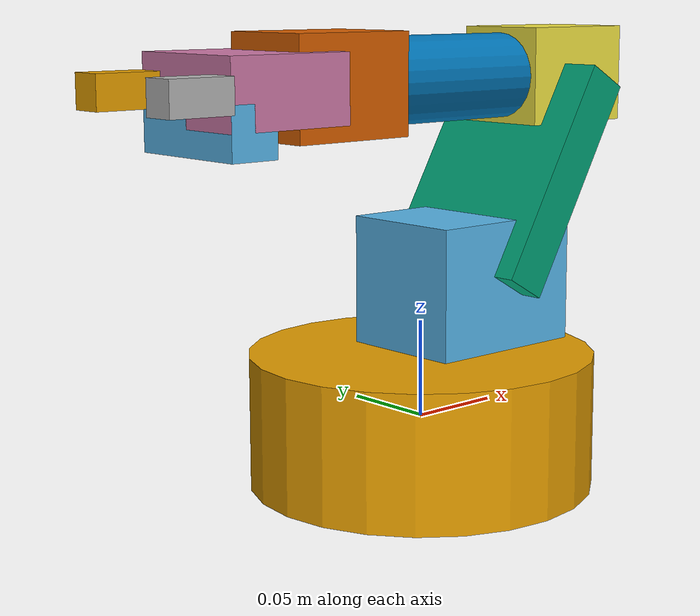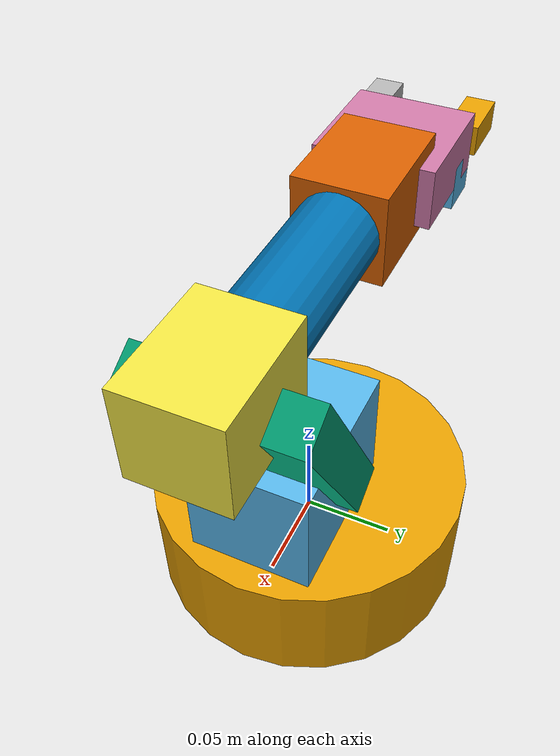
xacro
<?xml version="1.0"?>
<robot name="Lynxmotion AL5B" xmlns:xacro="http://ros.org/wiki/xacro">
  <xacro:property name="PI" value="3.1415" />
  <xacro:property name="deg2rad" value="0.017453293" />
  <xacro:property name="base_height" value="0.069" />
  <xacro:property name="base_radius" value="${6.193/4.803*base_height}" />
  <xacro:property name="base_servo_len" value="${base_radius}" />
  <xacro:property name="base_servo_width" value="${base_radius*0.75}" />

  <xacro:property name="shoulder_to_elbow" value="0.12065" />
  <xacro:property name="elbow_to_wrist" value="0.127" />
  <xacro:property name="wrist_to_tip" value="0.085725" />
  <xacro:property name="height_reaching_up" value="0.40005" />

  <link name="base_link">
    <visual>
      <origin xyz="0 0 0" rpy="0 0 0"/>
      <geometry>
        <cylinder length="${base_height}" radius="${base_radius}"/>
      </geometry>
    </visual>
  </link>

  <link name="shoulder">
    <visual>
      <origin xyz="0 0 0" rpy="0 0 0"/>
      <geometry>
        <box size="${base_servo_len} ${base_servo_width} ${base_servo_width}"/>
      </geometry>
    </visual>
  </link>

  <joint name="base_shoulder_joint" type="revolute">
    <origin xyz="${base_radius/3} 0 ${base_height}" rpy="0 0 0"/>
    <parent link="base_link"/>
    <child link="shoulder"/>
    <axis xyz="0 0 1"/>
    <limit lower="-${PI/2}" upper="${PI/2}" effort="0" velocity="3.67"/>
  </joint>

  <link name="elbow">
    <visual>
      <origin xyz="0 0 ${shoulder_to_elbow/2}" rpy="0 0 0"/>
      <geometry>
        <box size="${shoulder_to_elbow*0.2} ${shoulder_to_elbow*0.75} ${shoulder_to_elbow}"/>
      </geometry>
    </visual>
  </link>

  <joint name="shoulder_elbow_joint" type="revolute">
    <origin xyz="0 0 0" rpy="0 ${30*deg2rad} 0"/>
    <parent link="shoulder"/>
    <child link="elbow"/>
    <axis xyz="0 1 0"/>
    <limit lower="-${PI/2}" upper="${PI/2}" effort="0" velocity="3.67"/>
  </joint>

  <link name="elbow_box">
    <visual>
      <origin xyz="0 0 0" rpy="0 0 0"/>
      <geometry>
        <box size="${base_servo_width*0.75} ${base_servo_width*0.75} ${base_servo_len*0.75}"/>
      </geometry>
    </visual>
  </link>

  <joint name="elbow_box_elbow_joint" type="revolute">
    <origin xyz="0 0 ${shoulder_to_elbow}" rpy="0 ${-120*deg2rad} 0"/>
    <parent link="elbow"/>
    <child link="elbow_box"/>
    <axis xyz="0 1 0"/>
    <limit lower="-${30*deg2rad}" upper="${PI}" effort="0" velocity="3.67"/>
  </joint>

  <link name="elbow_wrist_pipe">
    <visual>
      <origin xyz="0 0 ${base_servo_len/2}" rpy="0 0 0"/>
      <geometry>
        <cylinder radius="${base_servo_width*0.33}" length="${base_servo_len}" />
      </geometry>
    </visual>
  </link>

  <joint name="elbow_box_elbow_wrist_pipe_joint" type="revolute">
    <origin xyz="0 0 ${base_servo_len*0.75/2}" rpy="0 0 0"/>
    <parent link="elbow_box"/>
    <child link="elbow_wrist_pipe"/>
    <axis xyz="0 0 1"/>
    <limit lower="-${PI/2}" upper="${PI/2}" effort="0" velocity="3.67"/>
  </joint>

  <link name="wrist_box">
    <visual>
      <origin xyz="0 0 ${base_servo_len*0.75/2}" rpy="0 0 0"/>
      <geometry>
        <box size="${base_servo_width*0.75} ${base_servo_width*0.75} ${base_servo_len*0.75}"/>
      </geometry>
    </visual>
  </link>

  <joint name="elbow_wrist_pipe_wrist_box_joint" type="revolute">
    <origin xyz="0 0 ${base_servo_len}" rpy="0 0 0"/>
    <parent link="elbow_wrist_pipe"/>
    <child link="wrist_box"/>
    <axis xyz="0 0 1"/>
    <limit lower="-${PI/2}" upper="${PI/2}" effort="0" velocity="3.67"/>
  </joint>

  <link name="tip_box">
    <visual>
      <origin xyz="0 0 ${base_servo_len*0.75/2}" rpy="0 0 0"/>
      <geometry>
        <box size="${base_servo_width*0.50} ${base_servo_len*0.75} ${base_servo_len*0.75}"/>
      </geometry>
    </visual>
  </link>

  <joint name="wrist_box_tip_box_joint" type="revolute">
    <origin xyz="0 0 ${base_servo_len*0.75*0.66}" rpy="0 0 0"/>
    <parent link="wrist_box"/>
    <child link="tip_box"/>
    <axis xyz="0 1 0"/>
    <limit lower="-${PI/2}" upper="${PI/2}" effort="0" velocity="3.67"/>
  </joint>

  <link name="gripper_l">
    <visual>
      <origin xyz="0 0 ${base_servo_width*0.25}" rpy="0 0 0"/>
      <geometry>
        <box size="${base_servo_width*0.25} ${base_servo_width*0.25} ${base_servo_width*0.5}"/>
      </geometry>
    </visual>
  </link>

  <link name="gripper_r">
    <visual>
      <origin xyz="0 0 ${base_servo_width*0.25}" rpy="0 0 0"/>
      <geometry>
        <box size="${base_servo_width*0.25} ${base_servo_width*0.25} ${base_servo_width*0.5}"/>
      </geometry>
    </visual>
  </link>

  <joint name="tip_box_gripper_l_joint" type="prismatic">
    <origin xyz="0 ${-base_servo_len*0.5+base_servo_width*0.25} ${base_servo_len*0.75}" rpy="0 0 0"/>
    <parent link="tip_box"/>
    <child link="gripper_l"/>
    <axis xyz="0 1 0"/>
    <limit lower="0" upper="${base_servo_len*0.75/2-base_servo_width*0.25*(3/4)}" effort="0" velocity="3.67"/>
  </joint>

  <joint name="tip_box_gripper_r_joint" type="prismatic">
    <origin xyz="0 ${base_servo_len*0.5-base_servo_width*0.25} ${base_servo_len*0.75}" rpy="0 0 0"/>
    <parent link="tip_box"/>
    <child link="gripper_r"/>
    <axis xyz="0 1 0"/>
    <limit lower="${-base_servo_len*0.75/2+base_servo_width*0.25*(3/4)}" upper="0" effort="0" velocity="3.67"/>
  </joint>

  <link name="tip_box_servo">
    <visual>
      <origin xyz="0 0 0" rpy="0 0 0"/>
      <geometry>
        <box size="${base_servo_width*0.75/2} ${base_servo_width*0.75/2} ${base_servo_len*0.75}"/>
      </geometry>
    </visual>
  </link>

  <joint name="tip_box_tip_box_servo_joint" type="fixed">
    <origin xyz="${-base_servo_len*0.75/4} 0 ${base_servo_len*0.75-base_servo_width*0.75/4}" rpy="${-PI/2} 0 0"/>
    <parent link="tip_box"/>
    <child link="tip_box_servo"/>
  </joint>
</robot>
